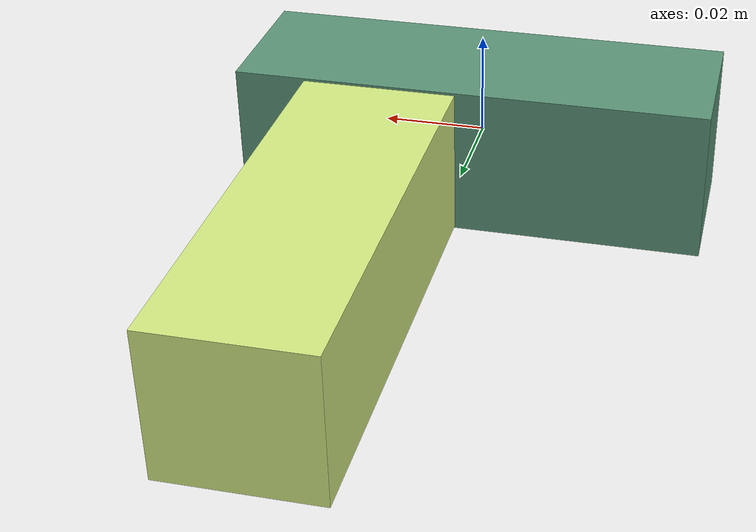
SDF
<sdf version="1.4"><world name="default"><model name="object0"><link name="link1"><pose>0 0 0 0 0 0</pose><inertial><pose>0 0 0 0 0 0</pose><mass>0.050068280904177496</mass><inertia><ixx>7.510242135626624e-06</ixx><ixy>0</ixy><iyy>3.9624121537051235e-05</iyy><ixz>0</ixz><iyz>0</iyz><izz>3.9624121537051235e-05</izz></inertia></inertial><visual name="link1_visual"><pose>0 0  0 0 0 0</pose><geometry><box><size>0.09271903871143981 0.03 0.03</size></box></geometry><material><diffuse>0.36076523194692983 0.5873114997191046 0.4750152779931589 1</diffuse></material></visual><collision><pose>0 0  0 0 0 0</pose><geometry><box><size>0.09271903871143981 0.03 0.03</size></box></geometry></collision></link><link name="link2"><pose>0.017354679089485375 0.04378430996465479 0 0 0 0</pose><inertial><pose>0 0 0 0 0 0</pose><mass>0.06073488610135579</mass><inertia><ixx>6.828095946908005e-05</ixx><ixy>0</ixy><iyy>8.811619725205034e-06</iyy><ixz>0</ixz><iyz>0</iyz><izz>6.857957265907838e-05</izz></inertia></inertial><visual name="link2_visual"><pose>0 0  0 0 0 0</pose><geometry><box><size>0.03 0.11247201129880702 0.028999999999999998</size></box></geometry><material><diffuse>0.8336986727762901 0.9283929403186542 0.516576112358665 1</diffuse></material></visual><collision><pose>0 0  0 0 0 0</pose><geometry><box><size>0.03 0.11247201129880702 0.028999999999999998</size></box></geometry></collision></link><joint name="link_joint_0" type="fixed"><parent>link1</parent><child>link2</child><pose>0 0 0 0 0 0</pose><axis><xyz>0 0 1</xyz></axis></joint></model></world></sdf>
